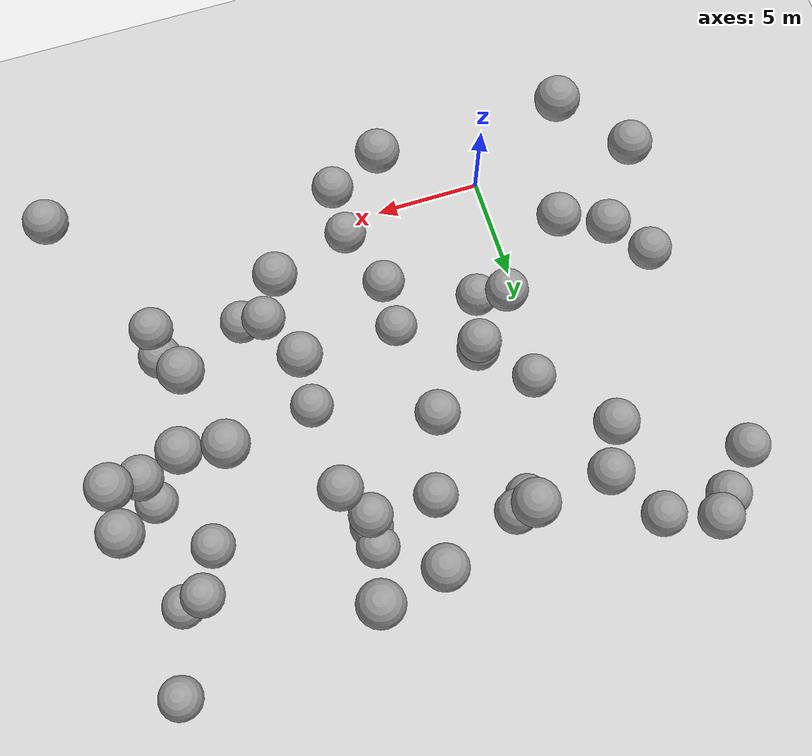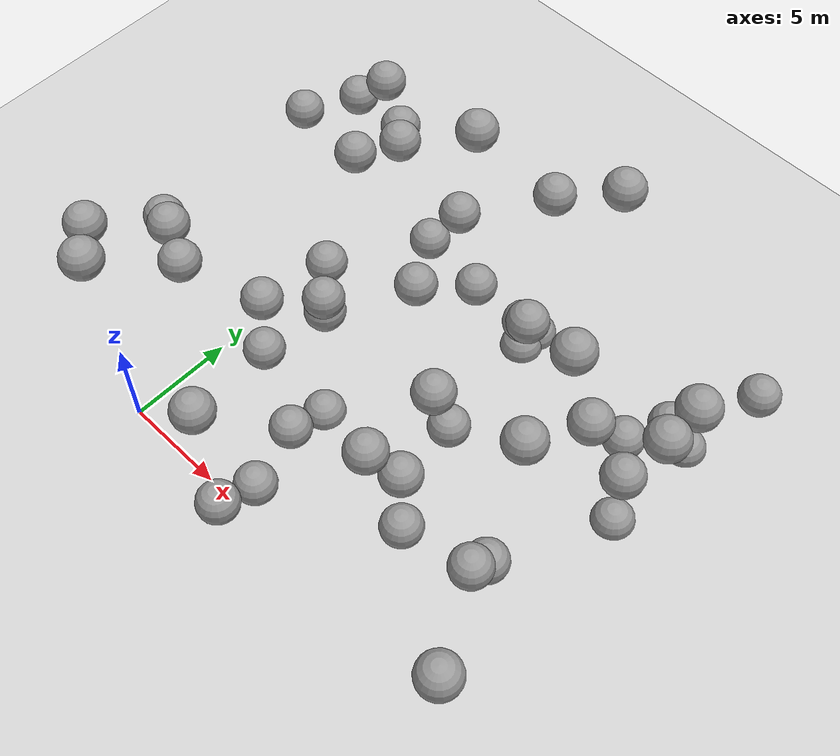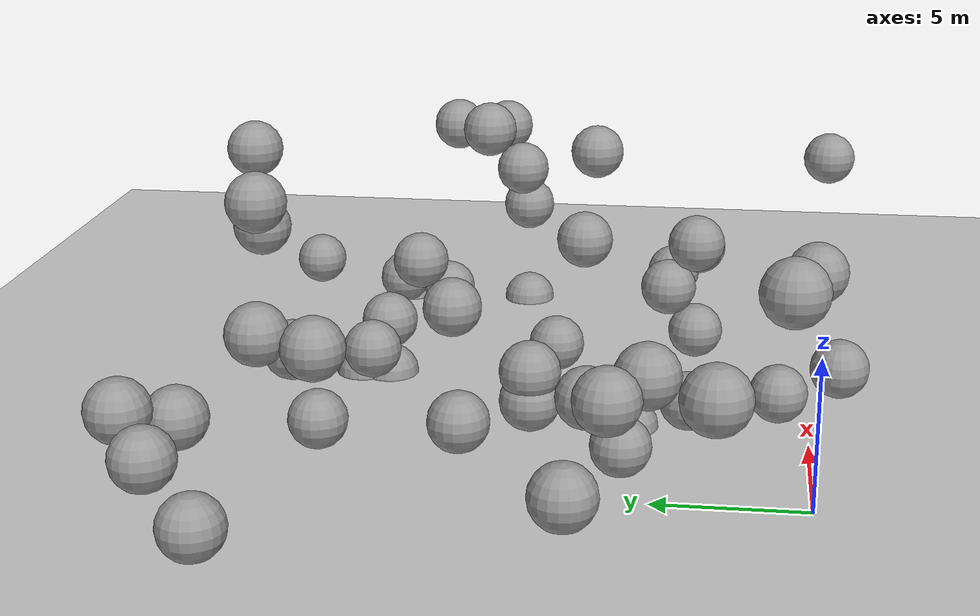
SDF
<sdf version="1.7">
 <world name="default">
  <model name="ground_plane">
   <static>1</static>
   <link name="link">
    <collision name="collision">
     <geometry><plane><normal>0 0 1</normal><size>100 100</size></plane></geometry>
     <surface>
      <contact><collide_bitmask>65535</collide_bitmask></contact>
      <friction><ode><mu>100</mu><mu2>50</mu2></ode></friction>
     </surface>
    </collision>
    <visual name="visual">
     <cast_shadows>0</cast_shadows>
     <geometry><plane><normal>0 0 1</normal><size>100 100</size></plane></geometry>
     <material>
      <script><uri>file://media/materials/scripts/gazebo.material</uri><name>Gazebo/Grey</name></script>
     </material>
    </visual>
   </link>
  </model>
  <model name="sphere_0">
   <static>1</static>
   <pose>11 9 1 0 0 0</pose>
   <link name="link">
    <inertial>
     <mass>418.87902047863906</mass>
     <inertia>
      <ixx>167.55160819145564</ixx>
      <iyy>167.55160819145564</iyy>
      <izz>167.55160819145564</izz>
      <ixy>0</ixy>
      <ixz>0</ixz>
      <iyz>0</iyz>
     </inertia>
    </inertial>
    <collision name="collision"><geometry><sphere><radius>1.0</radius></sphere></geometry></collision>
    <visual name="visual">
     <geometry><sphere><radius>1.0</radius></sphere></geometry>
     <material>
      <script><uri>file://media/materials/scripts/gazebo.material</uri><name>Gazebo/Grey</name></script>
     </material>
    </visual>
   </link>
  </model>
  <model name="sphere_4">
   <static>1</static>
   <pose>18 16 1 0 0 0</pose>
   <link name="link">
    <inertial>
     <mass>418.87902047863906</mass>
     <inertia>
      <ixx>167.55160819145564</ixx>
      <iyy>167.55160819145564</iyy>
      <izz>167.55160819145564</izz>
      <ixy>0</ixy>
      <ixz>0</ixz>
      <iyz>0</iyz>
     </inertia>
    </inertial>
    <collision name="collision"><geometry><sphere><radius>1.0</radius></sphere></geometry></collision>
    <visual name="visual">
     <geometry><sphere><radius>1.0</radius></sphere></geometry>
     <material>
      <script><uri>file://media/materials/scripts/gazebo.material</uri><name>Gazebo/Grey</name></script>
     </material>
    </visual>
   </link>
  </model>
  <model name="sphere_12">
   <static>1</static>
   <pose>0 17 5 0 0 0</pose>
   <link name="link">
    <inertial>
     <mass>418.87902047863906</mass>
     <inertia>
      <ixx>167.55160819145564</ixx>
      <iyy>167.55160819145564</iyy>
      <izz>167.55160819145564</izz>
      <ixy>0</ixy>
      <ixz>0</ixz>
      <iyz>0</iyz>
     </inertia>
    </inertial>
    <collision name="collision"><geometry><sphere><radius>1.0</radius></sphere></geometry></collision>
    <visual name="visual">
     <geometry><sphere><radius>1.0</radius></sphere></geometry>
     <material>
      <script><uri>file://media/materials/scripts/gazebo.material</uri><name>Gazebo/Grey</name></script>
     </material>
    </visual>
   </link>
  </model>
  <model name="sphere_13">
   <static>1</static>
   <pose>15 12 8 0 0 0</pose>
   <link name="link">
    <inertial>
     <mass>418.87902047863906</mass>
     <inertia>
      <ixx>167.55160819145564</ixx>
      <iyy>167.55160819145564</iyy>
      <izz>167.55160819145564</izz>
      <ixy>0</ixy>
      <ixz>0</ixz>
      <iyz>0</iyz>
     </inertia>
    </inertial>
    <collision name="collision"><geometry><sphere><radius>1.0</radius></sphere></geometry></collision>
    <visual name="visual">
     <geometry><sphere><radius>1.0</radius></sphere></geometry>
     <material>
      <script><uri>file://media/materials/scripts/gazebo.material</uri><name>Gazebo/Grey</name></script>
     </material>
    </visual>
   </link>
  </model>
  <model name="sphere_16">
   <static>1</static>
   <pose>5 0 6 0 0 0</pose>
   <link name="link">
    <inertial>
     <mass>418.87902047863906</mass>
     <inertia>
      <ixx>167.55160819145564</ixx>
      <iyy>167.55160819145564</iyy>
      <izz>167.55160819145564</izz>
      <ixy>0</ixy>
      <ixz>0</ixz>
      <iyz>0</iyz>
     </inertia>
    </inertial>
    <collision name="collision"><geometry><sphere><radius>1.0</radius></sphere></geometry></collision>
    <visual name="visual">
     <geometry><sphere><radius>1.0</radius></sphere></geometry>
     <material>
      <script><uri>file://media/materials/scripts/gazebo.material</uri><name>Gazebo/Grey</name></script>
     </material>
    </visual>
   </link>
  </model>
  <model name="sphere_17">
   <static>1</static>
   <pose>4 18 8 0 0 0</pose>
   <link name="link">
    <inertial>
     <mass>418.87902047863906</mass>
     <inertia>
      <ixx>167.55160819145564</ixx>
      <iyy>167.55160819145564</iyy>
      <izz>167.55160819145564</izz>
      <ixy>0</ixy>
      <ixz>0</ixz>
      <iyz>0</iyz>
     </inertia>
    </inertial>
    <collision name="collision"><geometry><sphere><radius>1.0</radius></sphere></geometry></collision>
    <visual name="visual">
     <geometry><sphere><radius>1.0</radius></sphere></geometry>
     <material>
      <script><uri>file://media/materials/scripts/gazebo.material</uri><name>Gazebo/Grey</name></script>
     </material>
    </visual>
   </link>
  </model>
  <model name="sphere_21">
   <static>1</static>
   <pose>17 5 2 0 0 0</pose>
   <link name="link">
    <inertial>
     <mass>418.87902047863906</mass>
     <inertia>
      <ixx>167.55160819145564</ixx>
      <iyy>167.55160819145564</iyy>
      <izz>167.55160819145564</izz>
      <ixy>0</ixy>
      <ixz>0</ixz>
      <iyz>0</iyz>
     </inertia>
    </inertial>
    <collision name="collision"><geometry><sphere><radius>1.0</radius></sphere></geometry></collision>
    <visual name="visual">
     <geometry><sphere><radius>1.0</radius></sphere></geometry>
     <material>
      <script><uri>file://media/materials/scripts/gazebo.material</uri><name>Gazebo/Grey</name></script>
     </material>
    </visual>
   </link>
  </model>
  <model name="sphere_23">
   <static>1</static>
   <pose>6 4 1 0 0 0</pose>
   <link name="link">
    <inertial>
     <mass>418.87902047863906</mass>
     <inertia>
      <ixx>167.55160819145564</ixx>
      <iyy>167.55160819145564</iyy>
      <izz>167.55160819145564</izz>
      <ixy>0</ixy>
      <ixz>0</ixz>
      <iyz>0</iyz>
     </inertia>
    </inertial>
    <collision name="collision"><geometry><sphere><radius>1.0</radius></sphere></geometry></collision>
    <visual name="visual">
     <geometry><sphere><radius>1.0</radius></sphere></geometry>
     <material>
      <script><uri>file://media/materials/scripts/gazebo.material</uri><name>Gazebo/Grey</name></script>
     </material>
    </visual>
   </link>
  </model>
  <model name="sphere_31">
   <static>1</static>
   <pose>10 16 0 0 0 0</pose>
   <link name="link">
    <inertial>
     <mass>418.87902047863906</mass>
     <inertia>
      <ixx>167.55160819145564</ixx>
      <iyy>167.55160819145564</iyy>
      <izz>167.55160819145564</izz>
      <ixy>0</ixy>
      <ixz>0</ixz>
      <iyz>0</iyz>
     </inertia>
    </inertial>
    <collision name="collision"><geometry><sphere><radius>1.0</radius></sphere></geometry></collision>
    <visual name="visual">
     <geometry><sphere><radius>1.0</radius></sphere></geometry>
     <material>
      <script><uri>file://media/materials/scripts/gazebo.material</uri><name>Gazebo/Grey</name></script>
     </material>
    </visual>
   </link>
  </model>
  <model name="sphere_34">
   <static>1</static>
   <pose>17 14 1 0 0 0</pose>
   <link name="link">
    <inertial>
     <mass>418.87902047863906</mass>
     <inertia>
      <ixx>167.55160819145564</ixx>
      <iyy>167.55160819145564</iyy>
      <izz>167.55160819145564</izz>
      <ixy>0</ixy>
      <ixz>0</ixz>
      <iyz>0</iyz>
     </inertia>
    </inertial>
    <collision name="collision"><geometry><sphere><radius>1.0</radius></sphere></geometry></collision>
    <visual name="visual">
     <geometry><sphere><radius>1.0</radius></sphere></geometry>
     <material>
      <script><uri>file://media/materials/scripts/gazebo.material</uri><name>Gazebo/Grey</name></script>
     </material>
    </visual>
   </link>
  </model>
  <model name="sphere_38">
   <static>1</static>
   <pose>7 1 1 0 0 0</pose>
   <link name="link">
    <inertial>
     <mass>418.87902047863906</mass>
     <inertia>
      <ixx>167.55160819145564</ixx>
      <iyy>167.55160819145564</iyy>
      <izz>167.55160819145564</izz>
      <ixy>0</ixy>
      <ixz>0</ixz>
      <iyz>0</iyz>
     </inertia>
    </inertial>
    <collision name="collision"><geometry><sphere><radius>1.0</radius></sphere></geometry></collision>
    <visual name="visual">
     <geometry><sphere><radius>1.0</radius></sphere></geometry>
     <material>
      <script><uri>file://media/materials/scripts/gazebo.material</uri><name>Gazebo/Grey</name></script>
     </material>
    </visual>
   </link>
  </model>
  <model name="sphere_39">
   <static>1</static>
   <pose>-4 6 5 0 0 0</pose>
   <link name="link">
    <inertial>
     <mass>418.87902047863906</mass>
     <inertia>
      <ixx>167.55160819145564</ixx>
      <iyy>167.55160819145564</iyy>
      <izz>167.55160819145564</izz>
      <ixy>0</ixy>
      <ixz>0</ixz>
      <iyz>0</iyz>
     </inertia>
    </inertial>
    <collision name="collision"><geometry><sphere><radius>1.0</radius></sphere></geometry></collision>
    <visual name="visual">
     <geometry><sphere><radius>1.0</radius></sphere></geometry>
     <material>
      <script><uri>file://media/materials/scripts/gazebo.material</uri><name>Gazebo/Grey</name></script>
     </material>
    </visual>
   </link>
  </model>
  <model name="sphere_43">
   <static>1</static>
   <pose>4 17 3 0 0 0</pose>
   <link name="link">
    <inertial>
     <mass>418.87902047863906</mass>
     <inertia>
      <ixx>167.55160819145564</ixx>
      <iyy>167.55160819145564</iyy>
      <izz>167.55160819145564</izz>
      <ixy>0</ixy>
      <ixz>0</ixz>
      <iyz>0</iyz>
     </inertia>
    </inertial>
    <collision name="collision"><geometry><sphere><radius>1.0</radius></sphere></geometry></collision>
    <visual name="visual">
     <geometry><sphere><radius>1.0</radius></sphere></geometry>
     <material>
      <script><uri>file://media/materials/scripts/gazebo.material</uri><name>Gazebo/Grey</name></script>
     </material>
    </visual>
   </link>
  </model>
  <model name="sphere_45">
   <static>1</static>
   <pose>20 -1 6 0 0 0</pose>
   <link name="link">
    <inertial>
     <mass>418.87902047863906</mass>
     <inertia>
      <ixx>167.55160819145564</ixx>
      <iyy>167.55160819145564</iyy>
      <izz>167.55160819145564</izz>
      <ixy>0</ixy>
      <ixz>0</ixz>
      <iyz>0</iyz>
     </inertia>
    </inertial>
    <collision name="collision"><geometry><sphere><radius>1.0</radius></sphere></geometry></collision>
    <visual name="visual">
     <geometry><sphere><radius>1.0</radius></sphere></geometry>
     <material>
      <script><uri>file://media/materials/scripts/gazebo.material</uri><name>Gazebo/Grey</name></script>
     </material>
    </visual>
   </link>
  </model>
  <model name="sphere_50">
   <static>1</static>
   <pose>20 12 7 0 0 0</pose>
   <link name="link">
    <inertial>
     <mass>418.87902047863906</mass>
     <inertia>
      <ixx>167.55160819145564</ixx>
      <iyy>167.55160819145564</iyy>
      <izz>167.55160819145564</izz>
      <ixy>0</ixy>
      <ixz>0</ixz>
      <iyz>0</iyz>
     </inertia>
    </inertial>
    <collision name="collision"><geometry><sphere><radius>1.0</radius></sphere></geometry></collision>
    <visual name="visual">
     <geometry><sphere><radius>1.0</radius></sphere></geometry>
     <material>
      <script><uri>file://media/materials/scripts/gazebo.material</uri><name>Gazebo/Grey</name></script>
     </material>
    </visual>
   </link>
  </model>
  <model name="sphere_52">
   <static>1</static>
   <pose>1 11 2 0 0 0</pose>
   <link name="link">
    <inertial>
     <mass>418.87902047863906</mass>
     <inertia>
      <ixx>167.55160819145564</ixx>
      <iyy>167.55160819145564</iyy>
      <izz>167.55160819145564</izz>
      <ixy>0</ixy>
      <ixz>0</ixz>
      <iyz>0</iyz>
     </inertia>
    </inertial>
    <collision name="collision"><geometry><sphere><radius>1.0</radius></sphere></geometry></collision>
    <visual name="visual">
     <geometry><sphere><radius>1.0</radius></sphere></geometry>
     <material>
      <script><uri>file://media/materials/scripts/gazebo.material</uri><name>Gazebo/Grey</name></script>
     </material>
    </visual>
   </link>
  </model>
  <model name="sphere_55">
   <static>1</static>
   <pose>11 8 5 0 0 0</pose>
   <link name="link">
    <inertial>
     <mass>418.87902047863906</mass>
     <inertia>
      <ixx>167.55160819145564</ixx>
      <iyy>167.55160819145564</iyy>
      <izz>167.55160819145564</izz>
      <ixy>0</ixy>
      <ixz>0</ixz>
      <iyz>0</iyz>
     </inertia>
    </inertial>
    <collision name="collision"><geometry><sphere><radius>1.0</radius></sphere></geometry></collision>
    <visual name="visual">
     <geometry><sphere><radius>1.0</radius></sphere></geometry>
     <material>
      <script><uri>file://media/materials/scripts/gazebo.material</uri><name>Gazebo/Grey</name></script>
     </material>
    </visual>
   </link>
  </model>
  <model name="sphere_57">
   <static>1</static>
   <pose>3 9 3 0 0 0</pose>
   <link name="link">
    <inertial>
     <mass>418.87902047863906</mass>
     <inertia>
      <ixx>167.55160819145564</ixx>
      <iyy>167.55160819145564</iyy>
      <izz>167.55160819145564</izz>
      <ixy>0</ixy>
      <ixz>0</ixz>
      <iyz>0</iyz>
     </inertia>
    </inertial>
    <collision name="collision"><geometry><sphere><radius>1.0</radius></sphere></geometry></collision>
    <visual name="visual">
     <geometry><sphere><radius>1.0</radius></sphere></geometry>
     <material>
      <script><uri>file://media/materials/scripts/gazebo.material</uri><name>Gazebo/Grey</name></script>
     </material>
    </visual>
   </link>
  </model>
  <model name="sphere_58">
   <static>1</static>
   <pose>-4 20 4 0 0 0</pose>
   <link name="link">
    <inertial>
     <mass>418.87902047863906</mass>
     <inertia>
      <ixx>167.55160819145564</ixx>
      <iyy>167.55160819145564</iyy>
      <izz>167.55160819145564</izz>
      <ixy>0</ixy>
      <ixz>0</ixz>
      <iyz>0</iyz>
     </inertia>
    </inertial>
    <collision name="collision"><geometry><sphere><radius>1.0</radius></sphere></geometry></collision>
    <visual name="visual">
     <geometry><sphere><radius>1.0</radius></sphere></geometry>
     <material>
      <script><uri>file://media/materials/scripts/gazebo.material</uri><name>Gazebo/Grey</name></script>
     </material>
    </visual>
   </link>
  </model>
  <model name="sphere_61">
   <static>1</static>
   <pose>19 11 0 0 0 0</pose>
   <link name="link">
    <inertial>
     <mass>418.87902047863906</mass>
     <inertia>
      <ixx>167.55160819145564</ixx>
      <iyy>167.55160819145564</iyy>
      <izz>167.55160819145564</izz>
      <ixy>0</ixy>
      <ixz>0</ixz>
      <iyz>0</iyz>
     </inertia>
    </inertial>
    <collision name="collision"><geometry><sphere><radius>1.0</radius></sphere></geometry></collision>
    <visual name="visual">
     <geometry><sphere><radius>1.0</radius></sphere></geometry>
     <material>
      <script><uri>file://media/materials/scripts/gazebo.material</uri><name>Gazebo/Grey</name></script>
     </material>
    </visual>
   </link>
  </model>
  <model name="sphere_63">
   <static>1</static>
   <pose>6 6 0 0 0 0</pose>
   <link name="link">
    <inertial>
     <mass>418.87902047863906</mass>
     <inertia>
      <ixx>167.55160819145564</ixx>
      <iyy>167.55160819145564</iyy>
      <izz>167.55160819145564</izz>
      <ixy>0</ixy>
      <ixz>0</ixz>
      <iyz>0</iyz>
     </inertia>
    </inertial>
    <collision name="collision"><geometry><sphere><radius>1.0</radius></sphere></geometry></collision>
    <visual name="visual">
     <geometry><sphere><radius>1.0</radius></sphere></geometry>
     <material>
      <script><uri>file://media/materials/scripts/gazebo.material</uri><name>Gazebo/Grey</name></script>
     </material>
    </visual>
   </link>
  </model>
  <model name="sphere_64">
   <static>1</static>
   <pose>13 4 1 0 0 0</pose>
   <link name="link">
    <inertial>
     <mass>418.87902047863906</mass>
     <inertia>
      <ixx>167.55160819145564</ixx>
      <iyy>167.55160819145564</iyy>
      <izz>167.55160819145564</izz>
      <ixy>0</ixy>
      <ixz>0</ixz>
      <iyz>0</iyz>
     </inertia>
    </inertial>
    <collision name="collision"><geometry><sphere><radius>1.0</radius></sphere></geometry></collision>
    <visual name="visual">
     <geometry><sphere><radius>1.0</radius></sphere></geometry>
     <material>
      <script><uri>file://media/materials/scripts/gazebo.material</uri><name>Gazebo/Grey</name></script>
     </material>
    </visual>
   </link>
  </model>
  <model name="sphere_70">
   <static>1</static>
   <pose>-7 17 2 0 0 0</pose>
   <link name="link">
    <inertial>
     <mass>418.87902047863906</mass>
     <inertia>
      <ixx>167.55160819145564</ixx>
      <iyy>167.55160819145564</iyy>
      <izz>167.55160819145564</izz>
      <ixy>0</ixy>
      <ixz>0</ixz>
      <iyz>0</iyz>
     </inertia>
    </inertial>
    <collision name="collision"><geometry><sphere><radius>1.0</radius></sphere></geometry></collision>
    <visual name="visual">
     <geometry><sphere><radius>1.0</radius></sphere></geometry>
     <material>
      <script><uri>file://media/materials/scripts/gazebo.material</uri><name>Gazebo/Grey</name></script>
     </material>
    </visual>
   </link>
  </model>
  <model name="sphere_71">
   <static>1</static>
   <pose>20 20 1 0 0 0</pose>
   <link name="link">
    <inertial>
     <mass>418.87902047863906</mass>
     <inertia>
      <ixx>167.55160819145564</ixx>
      <iyy>167.55160819145564</iyy>
      <izz>167.55160819145564</izz>
      <ixy>0</ixy>
      <ixz>0</ixz>
      <iyz>0</iyz>
     </inertia>
    </inertial>
    <collision name="collision"><geometry><sphere><radius>1.0</radius></sphere></geometry></collision>
    <visual name="visual">
     <geometry><sphere><radius>1.0</radius></sphere></geometry>
     <material>
      <script><uri>file://media/materials/scripts/gazebo.material</uri><name>Gazebo/Grey</name></script>
     </material>
    </visual>
   </link>
  </model>
  <model name="sphere_73">
   <static>1</static>
   <pose>-5 19 3 0 0 0</pose>
   <link name="link">
    <inertial>
     <mass>418.87902047863906</mass>
     <inertia>
      <ixx>167.55160819145564</ixx>
      <iyy>167.55160819145564</iyy>
      <izz>167.55160819145564</izz>
      <ixy>0</ixy>
      <ixz>0</ixz>
      <iyz>0</iyz>
     </inertia>
    </inertial>
    <collision name="collision"><geometry><sphere><radius>1.0</radius></sphere></geometry></collision>
    <visual name="visual">
     <geometry><sphere><radius>1.0</radius></sphere></geometry>
     <material>
      <script><uri>file://media/materials/scripts/gazebo.material</uri><name>Gazebo/Grey</name></script>
     </material>
    </visual>
   </link>
  </model>
  <model name="sphere_74">
   <static>1</static>
   <pose>-6 3 6 0 0 0</pose>
   <link name="link">
    <inertial>
     <mass>418.87902047863906</mass>
     <inertia>
      <ixx>167.55160819145564</ixx>
      <iyy>167.55160819145564</iyy>
      <izz>167.55160819145564</izz>
      <ixy>0</ixy>
      <ixz>0</ixz>
      <iyz>0</iyz>
     </inertia>
    </inertial>
    <collision name="collision"><geometry><sphere><radius>1.0</radius></sphere></geometry></collision>
    <visual name="visual">
     <geometry><sphere><radius>1.0</radius></sphere></geometry>
     <material>
      <script><uri>file://media/materials/scripts/gazebo.material</uri><name>Gazebo/Grey</name></script>
     </material>
    </visual>
   </link>
  </model>
  <model name="sphere_76">
   <static>1</static>
   <pose>1 7 3 0 0 0</pose>
   <link name="link">
    <inertial>
     <mass>418.87902047863906</mass>
     <inertia>
      <ixx>167.55160819145564</ixx>
      <iyy>167.55160819145564</iyy>
      <izz>167.55160819145564</izz>
      <ixy>0</ixy>
      <ixz>0</ixz>
      <iyz>0</iyz>
     </inertia>
    </inertial>
    <collision name="collision"><geometry><sphere><radius>1.0</radius></sphere></geometry></collision>
    <visual name="visual">
     <geometry><sphere><radius>1.0</radius></sphere></geometry>
     <material>
      <script><uri>file://media/materials/scripts/gazebo.material</uri><name>Gazebo/Grey</name></script>
     </material>
    </visual>
   </link>
  </model>
  <model name="sphere_80">
   <static>1</static>
   <pose>-2 19 3 0 0 0</pose>
   <link name="link">
    <inertial>
     <mass>418.87902047863906</mass>
     <inertia>
      <ixx>167.55160819145564</ixx>
      <iyy>167.55160819145564</iyy>
      <izz>167.55160819145564</izz>
      <ixy>0</ixy>
      <ixz>0</ixz>
      <iyz>0</iyz>
     </inertia>
    </inertial>
    <collision name="collision"><geometry><sphere><radius>1.0</radius></sphere></geometry></collision>
    <visual name="visual">
     <geometry><sphere><radius>1.0</radius></sphere></geometry>
     <material>
      <script><uri>file://media/materials/scripts/gazebo.material</uri><name>Gazebo/Grey</name></script>
     </material>
    </visual>
   </link>
  </model>
  <model name="sphere_81">
   <static>1</static>
   <pose>20 14 7 0 0 0</pose>
   <link name="link">
    <inertial>
     <mass>418.87902047863906</mass>
     <inertia>
      <ixx>167.55160819145564</ixx>
      <iyy>167.55160819145564</iyy>
      <izz>167.55160819145564</izz>
      <ixy>0</ixy>
      <ixz>0</ixz>
      <iyz>0</iyz>
     </inertia>
    </inertial>
    <collision name="collision"><geometry><sphere><radius>1.0</radius></sphere></geometry></collision>
    <visual name="visual">
     <geometry><sphere><radius>1.0</radius></sphere></geometry>
     <material>
      <script><uri>file://media/materials/scripts/gazebo.material</uri><name>Gazebo/Grey</name></script>
     </material>
    </visual>
   </link>
  </model>
  <model name="sphere_86">
   <static>1</static>
   <pose>2 6 1 0 0 0</pose>
   <link name="link">
    <inertial>
     <mass>418.87902047863906</mass>
     <inertia>
      <ixx>167.55160819145564</ixx>
      <iyy>167.55160819145564</iyy>
      <izz>167.55160819145564</izz>
      <ixy>0</ixy>
      <ixz>0</ixz>
      <iyz>0</iyz>
     </inertia>
    </inertial>
    <collision name="collision"><geometry><sphere><radius>1.0</radius></sphere></geometry></collision>
    <visual name="visual">
     <geometry><sphere><radius>1.0</radius></sphere></geometry>
     <material>
      <script><uri>file://media/materials/scripts/gazebo.material</uri><name>Gazebo/Grey</name></script>
     </material>
    </visual>
   </link>
  </model>
  <model name="sphere_96">
   <static>1</static>
   <pose>12 5 3 0 0 0</pose>
   <link name="link">
    <inertial>
     <mass>418.87902047863906</mass>
     <inertia>
      <ixx>167.55160819145564</ixx>
      <iyy>167.55160819145564</iyy>
      <izz>167.55160819145564</izz>
      <ixy>0</ixy>
      <ixz>0</ixz>
      <iyz>0</iyz>
     </inertia>
    </inertial>
    <collision name="collision"><geometry><sphere><radius>1.0</radius></sphere></geometry></collision>
    <visual name="visual">
     <geometry><sphere><radius>1.0</radius></sphere></geometry>
     <material>
      <script><uri>file://media/materials/scripts/gazebo.material</uri><name>Gazebo/Grey</name></script>
     </material>
    </visual>
   </link>
  </model>
  <model name="sphere_97">
   <static>1</static>
   <pose>-2 5 5 0 0 0</pose>
   <link name="link">
    <inertial>
     <mass>418.87902047863906</mass>
     <inertia>
      <ixx>167.55160819145564</ixx>
      <iyy>167.55160819145564</iyy>
      <izz>167.55160819145564</izz>
      <ixy>0</ixy>
      <ixz>0</ixz>
      <iyz>0</iyz>
     </inertia>
    </inertial>
    <collision name="collision"><geometry><sphere><radius>1.0</radius></sphere></geometry></collision>
    <visual name="visual">
     <geometry><sphere><radius>1.0</radius></sphere></geometry>
     <material>
      <script><uri>file://media/materials/scripts/gazebo.material</uri><name>Gazebo/Grey</name></script>
     </material>
    </visual>
   </link>
  </model>
  <model name="sphere_102">
   <static>1</static>
   <pose>3 9 2 0 0 0</pose>
   <link name="link">
    <inertial>
     <mass>418.87902047863906</mass>
     <inertia>
      <ixx>167.55160819145564</ixx>
      <iyy>167.55160819145564</iyy>
      <izz>167.55160819145564</izz>
      <ixy>0</ixy>
      <ixz>0</ixz>
      <iyz>0</iyz>
     </inertia>
    </inertial>
    <collision name="collision"><geometry><sphere><radius>1.0</radius></sphere></geometry></collision>
    <visual name="visual">
     <geometry><sphere><radius>1.0</radius></sphere></geometry>
     <material>
      <script><uri>file://media/materials/scripts/gazebo.material</uri><name>Gazebo/Grey</name></script>
     </material>
    </visual>
   </link>
  </model>
  <model name="sphere_103">
   <static>1</static>
   <pose>7 15 2 0 0 0</pose>
   <link name="link">
    <inertial>
     <mass>418.87902047863906</mass>
     <inertia>
      <ixx>167.55160819145564</ixx>
      <iyy>167.55160819145564</iyy>
      <izz>167.55160819145564</izz>
      <ixy>0</ixy>
      <ixz>0</ixz>
      <iyz>0</iyz>
     </inertia>
    </inertial>
    <collision name="collision"><geometry><sphere><radius>1.0</radius></sphere></geometry></collision>
    <visual name="visual">
     <geometry><sphere><radius>1.0</radius></sphere></geometry>
     <material>
      <script><uri>file://media/materials/scripts/gazebo.material</uri><name>Gazebo/Grey</name></script>
     </material>
    </visual>
   </link>
  </model>
  <model name="sphere_107">
   <static>1</static>
   <pose>10 15 0 0 0 0</pose>
   <link name="link">
    <inertial>
     <mass>418.87902047863906</mass>
     <inertia>
      <ixx>167.55160819145564</ixx>
      <iyy>167.55160819145564</iyy>
      <izz>167.55160819145564</izz>
      <ixy>0</ixy>
      <ixz>0</ixz>
      <iyz>0</iyz>
     </inertia>
    </inertial>
    <collision name="collision"><geometry><sphere><radius>1.0</radius></sphere></geometry></collision>
    <visual name="visual">
     <geometry><sphere><radius>1.0</radius></sphere></geometry>
     <material>
      <script><uri>file://media/materials/scripts/gazebo.material</uri><name>Gazebo/Grey</name></script>
     </material>
    </visual>
   </link>
  </model>
  <model name="sphere_109">
   <static>1</static>
   <pose>17 11 6 0 0 0</pose>
   <link name="link">
    <inertial>
     <mass>418.87902047863906</mass>
     <inertia>
      <ixx>167.55160819145564</ixx>
      <iyy>167.55160819145564</iyy>
      <izz>167.55160819145564</izz>
      <ixy>0</ixy>
      <ixz>0</ixz>
      <iyz>0</iyz>
     </inertia>
    </inertial>
    <collision name="collision"><geometry><sphere><radius>1.0</radius></sphere></geometry></collision>
    <visual name="visual">
     <geometry><sphere><radius>1.0</radius></sphere></geometry>
     <material>
      <script><uri>file://media/materials/scripts/gazebo.material</uri><name>Gazebo/Grey</name></script>
     </material>
    </visual>
   </link>
  </model>
  <model name="sphere_111">
   <static>1</static>
   <pose>10 15 2 0 0 0</pose>
   <link name="link">
    <inertial>
     <mass>418.87902047863906</mass>
     <inertia>
      <ixx>167.55160819145564</ixx>
      <iyy>167.55160819145564</iyy>
      <izz>167.55160819145564</izz>
      <ixy>0</ixy>
      <ixz>0</ixz>
      <iyz>0</iyz>
     </inertia>
    </inertial>
    <collision name="collision"><geometry><sphere><radius>1.0</radius></sphere></geometry></collision>
    <visual name="visual">
     <geometry><sphere><radius>1.0</radius></sphere></geometry>
     <material>
      <script><uri>file://media/materials/scripts/gazebo.material</uri><name>Gazebo/Grey</name></script>
     </material>
    </visual>
   </link>
  </model>
  <model name="sphere_112">
   <static>1</static>
   <pose>11 4 5 0 0 0</pose>
   <link name="link">
    <inertial>
     <mass>418.87902047863906</mass>
     <inertia>
      <ixx>167.55160819145564</ixx>
      <iyy>167.55160819145564</iyy>
      <izz>167.55160819145564</izz>
      <ixy>0</ixy>
      <ixz>0</ixz>
      <iyz>0</iyz>
     </inertia>
    </inertial>
    <collision name="collision"><geometry><sphere><radius>1.0</radius></sphere></geometry></collision>
    <visual name="visual">
     <geometry><sphere><radius>1.0</radius></sphere></geometry>
     <material>
      <script><uri>file://media/materials/scripts/gazebo.material</uri><name>Gazebo/Grey</name></script>
     </material>
    </visual>
   </link>
  </model>
  <model name="sphere_114">
   <static>1</static>
   <pose>17 4 3 0 0 0</pose>
   <link name="link">
    <inertial>
     <mass>418.87902047863906</mass>
     <inertia>
      <ixx>167.55160819145564</ixx>
      <iyy>167.55160819145564</iyy>
      <izz>167.55160819145564</izz>
      <ixy>0</ixy>
      <ixz>0</ixz>
      <iyz>0</iyz>
     </inertia>
    </inertial>
    <collision name="collision"><geometry><sphere><radius>1.0</radius></sphere></geometry></collision>
    <visual name="visual">
     <geometry><sphere><radius>1.0</radius></sphere></geometry>
     <material>
      <script><uri>file://media/materials/scripts/gazebo.material</uri><name>Gazebo/Grey</name></script>
     </material>
    </visual>
   </link>
  </model>
  <model name="sphere_116">
   <static>1</static>
   <pose>-6 7 3 0 0 0</pose>
   <link name="link">
    <inertial>
     <mass>418.87902047863906</mass>
     <inertia>
      <ixx>167.55160819145564</ixx>
      <iyy>167.55160819145564</iyy>
      <izz>167.55160819145564</izz>
      <ixy>0</ixy>
      <ixz>0</ixz>
      <iyz>0</iyz>
     </inertia>
    </inertial>
    <collision name="collision"><geometry><sphere><radius>1.0</radius></sphere></geometry></collision>
    <visual name="visual">
     <geometry><sphere><radius>1.0</radius></sphere></geometry>
     <material>
      <script><uri>file://media/materials/scripts/gazebo.material</uri><name>Gazebo/Grey</name></script>
     </material>
    </visual>
   </link>
  </model>
  <model name="sphere_119">
   <static>1</static>
   <pose>-3 1 8 0 0 0</pose>
   <link name="link">
    <inertial>
     <mass>418.87902047863906</mass>
     <inertia>
      <ixx>167.55160819145564</ixx>
      <iyy>167.55160819145564</iyy>
      <izz>167.55160819145564</izz>
      <ixy>0</ixy>
      <ixz>0</ixz>
      <iyz>0</iyz>
     </inertia>
    </inertial>
    <collision name="collision"><geometry><sphere><radius>1.0</radius></sphere></geometry></collision>
    <visual name="visual">
     <geometry><sphere><radius>1.0</radius></sphere></geometry>
     <material>
      <script><uri>file://media/materials/scripts/gazebo.material</uri><name>Gazebo/Grey</name></script>
     </material>
    </visual>
   </link>
  </model>
  <model name="sphere_120">
   <static>1</static>
   <pose>11 14 4 0 0 0</pose>
   <link name="link">
    <inertial>
     <mass>418.87902047863906</mass>
     <inertia>
      <ixx>167.55160819145564</ixx>
      <iyy>167.55160819145564</iyy>
      <izz>167.55160819145564</izz>
      <ixy>0</ixy>
      <ixz>0</ixz>
      <iyz>0</iyz>
     </inertia>
    </inertial>
    <collision name="collision"><geometry><sphere><radius>1.0</radius></sphere></geometry></collision>
    <visual name="visual">
     <geometry><sphere><radius>1.0</radius></sphere></geometry>
     <material>
      <script><uri>file://media/materials/scripts/gazebo.material</uri><name>Gazebo/Grey</name></script>
     </material>
    </visual>
   </link>
  </model>
  <model name="sphere_123">
   <static>1</static>
   <pose>7 -1 2 0 0 0</pose>
   <link name="link">
    <inertial>
     <mass>418.87902047863906</mass>
     <inertia>
      <ixx>167.55160819145564</ixx>
      <iyy>167.55160819145564</iyy>
      <izz>167.55160819145564</izz>
      <ixy>0</ixy>
      <ixz>0</ixz>
      <iyz>0</iyz>
     </inertia>
    </inertial>
    <collision name="collision"><geometry><sphere><radius>1.0</radius></sphere></geometry></collision>
    <visual name="visual">
     <geometry><sphere><radius>1.0</radius></sphere></geometry>
     <material>
      <script><uri>file://media/materials/scripts/gazebo.material</uri><name>Gazebo/Grey</name></script>
     </material>
    </visual>
   </link>
  </model>
  <model name="sphere_125">
   <static>1</static>
   <pose>-1 15 5 0 0 0</pose>
   <link name="link">
    <inertial>
     <mass>418.87902047863906</mass>
     <inertia>
      <ixx>167.55160819145564</ixx>
      <iyy>167.55160819145564</iyy>
      <izz>167.55160819145564</izz>
      <ixy>0</ixy>
      <ixz>0</ixz>
      <iyz>0</iyz>
     </inertia>
    </inertial>
    <collision name="collision"><geometry><sphere><radius>1.0</radius></sphere></geometry></collision>
    <visual name="visual">
     <geometry><sphere><radius>1.0</radius></sphere></geometry>
     <material>
      <script><uri>file://media/materials/scripts/gazebo.material</uri><name>Gazebo/Grey</name></script>
     </material>
    </visual>
   </link>
  </model>
  <model name="sphere_127">
   <static>1</static>
   <pose>11 20 8 0 0 0</pose>
   <link name="link">
    <inertial>
     <mass>418.87902047863906</mass>
     <inertia>
      <ixx>167.55160819145564</ixx>
      <iyy>167.55160819145564</iyy>
      <izz>167.55160819145564</izz>
      <ixy>0</ixy>
      <ixz>0</ixz>
      <iyz>0</iyz>
     </inertia>
    </inertial>
    <collision name="collision"><geometry><sphere><radius>1.0</radius></sphere></geometry></collision>
    <visual name="visual">
     <geometry><sphere><radius>1.0</radius></sphere></geometry>
     <material>
      <script><uri>file://media/materials/scripts/gazebo.material</uri><name>Gazebo/Grey</name></script>
     </material>
    </visual>
   </link>
  </model>
  <model name="sphere_132">
   <static>1</static>
   <pose>6 12 4 0 0 0</pose>
   <link name="link">
    <inertial>
     <mass>418.87902047863906</mass>
     <inertia>
      <ixx>167.55160819145564</ixx>
      <iyy>167.55160819145564</iyy>
      <izz>167.55160819145564</izz>
      <ixy>0</ixy>
      <ixz>0</ixz>
      <iyz>0</iyz>
     </inertia>
    </inertial>
    <collision name="collision"><geometry><sphere><radius>1.0</radius></sphere></geometry></collision>
    <visual name="visual">
     <geometry><sphere><radius>1.0</radius></sphere></geometry>
     <material>
      <script><uri>file://media/materials/scripts/gazebo.material</uri><name>Gazebo/Grey</name></script>
     </material>
    </visual>
   </link>
  </model>
  <model name="sphere_133">
   <static>1</static>
   <pose>19 11 4 0 0 0</pose>
   <link name="link">
    <inertial>
     <mass>418.87902047863906</mass>
     <inertia>
      <ixx>167.55160819145564</ixx>
      <iyy>167.55160819145564</iyy>
      <izz>167.55160819145564</izz>
      <ixy>0</ixy>
      <ixz>0</ixz>
      <iyz>0</iyz>
     </inertia>
    </inertial>
    <collision name="collision"><geometry><sphere><radius>1.0</radius></sphere></geometry></collision>
    <visual name="visual">
     <geometry><sphere><radius>1.0</radius></sphere></geometry>
     <material>
      <script><uri>file://media/materials/scripts/gazebo.material</uri><name>Gazebo/Grey</name></script>
     </material>
    </visual>
   </link>
  </model>
  <model name="sphere_135">
   <static>1</static>
   <pose>16 8 7 0 0 0</pose>
   <link name="link">
    <inertial>
     <mass>418.87902047863906</mass>
     <inertia>
      <ixx>167.55160819145564</ixx>
      <iyy>167.55160819145564</iyy>
      <izz>167.55160819145564</izz>
      <ixy>0</ixy>
      <ixz>0</ixz>
      <iyz>0</iyz>
     </inertia>
    </inertial>
    <collision name="collision"><geometry><sphere><radius>1.0</radius></sphere></geometry></collision>
    <visual name="visual">
     <geometry><sphere><radius>1.0</radius></sphere></geometry>
     <material>
      <script><uri>file://media/materials/scripts/gazebo.material</uri><name>Gazebo/Grey</name></script>
     </material>
    </visual>
   </link>
  </model>
  <model name="sphere_138">
   <static>1</static>
   <pose>3 16 1 0 0 0</pose>
   <link name="link">
    <inertial>
     <mass>418.87902047863906</mass>
     <inertia>
      <ixx>167.55160819145564</ixx>
      <iyy>167.55160819145564</iyy>
      <izz>167.55160819145564</izz>
      <ixy>0</ixy>
      <ixz>0</ixz>
      <iyz>0</iyz>
     </inertia>
    </inertial>
    <collision name="collision"><geometry><sphere><radius>1.0</radius></sphere></geometry></collision>
    <visual name="visual">
     <geometry><sphere><radius>1.0</radius></sphere></geometry>
     <material>
      <script><uri>file://media/materials/scripts/gazebo.material</uri><name>Gazebo/Grey</name></script>
     </material>
    </visual>
   </link>
  </model>
  <model name="sphere_146">
   <static>1</static>
   <pose>8 19 6 0 0 0</pose>
   <link name="link">
    <inertial>
     <mass>418.87902047863906</mass>
     <inertia>
      <ixx>167.55160819145564</ixx>
      <iyy>167.55160819145564</iyy>
      <izz>167.55160819145564</izz>
      <ixy>0</ixy>
      <ixz>0</ixz>
      <iyz>0</iyz>
     </inertia>
    </inertial>
    <collision name="collision"><geometry><sphere><radius>1.0</radius></sphere></geometry></collision>
    <visual name="visual">
     <geometry><sphere><radius>1.0</radius></sphere></geometry>
     <material>
      <script><uri>file://media/materials/scripts/gazebo.material</uri><name>Gazebo/Grey</name></script>
     </material>
    </visual>
   </link>
  </model>
  <model name="sphere_148">
   <static>1</static>
   <pose>19 16 0 0 0 0</pose>
   <link name="link">
    <inertial>
     <mass>418.87902047863906</mass>
     <inertia>
      <ixx>167.55160819145564</ixx>
      <iyy>167.55160819145564</iyy>
      <izz>167.55160819145564</izz>
      <ixy>0</ixy>
      <ixz>0</ixz>
      <iyz>0</iyz>
     </inertia>
    </inertial>
    <collision name="collision"><geometry><sphere><radius>1.0</radius></sphere></geometry></collision>
    <visual name="visual">
     <geometry><sphere><radius>1.0</radius></sphere></geometry>
     <material>
      <script><uri>file://media/materials/scripts/gazebo.material</uri><name>Gazebo/Grey</name></script>
     </material>
    </visual>
   </link>
  </model>
 </world>
</sdf>
